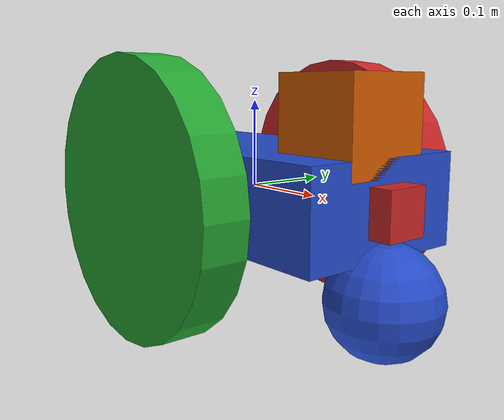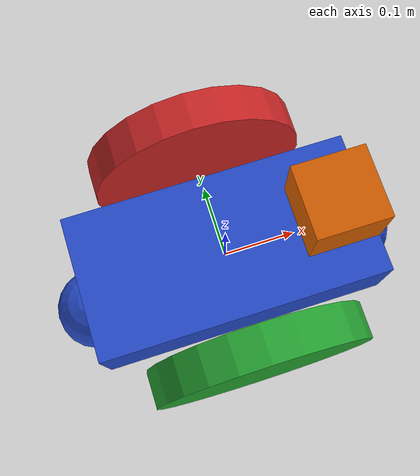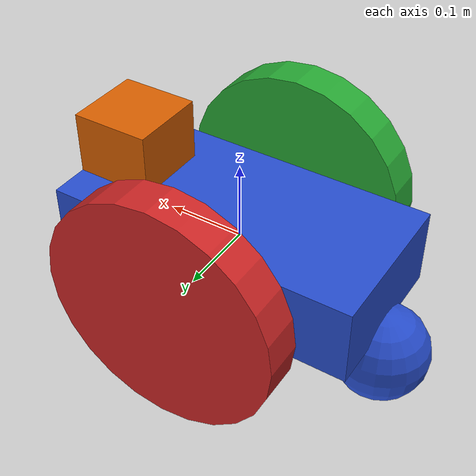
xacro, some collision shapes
<?xml version='1.0'?>

<robot name="my_robot" xmlns:xacro="http://www.ros.org/wiki/xacro">
  <xacro:include filename="$(find my_robot)/urdf/my_robot.gazebo" />
  <link name="robot_footprint"></link>

  <joint name="robot_footprint_joint" type="fixed">
    <origin xyz="0 0 0" rpy="0 0 0" />
    <parent link="robot_footprint"/>
    <child link="chassis" />
  </joint>

  <joint type="continuous" name="left_wheel_hinge">
    <origin xyz="0 0.15 0" rpy="0 0 0"/>
    <child link="left_wheel"/>
    <parent link="chassis"/>
    <axis xyz="0 1 0" rpy="0 0 0"/>
    <limit effort="10000" velocity="1000"/>
    <dynamics damping="1.0" friction="1.0"/>
  </joint>
  <joint type="continuous" name="right_wheel_hinge">
    <origin xyz="0 -0.15 0" rpy="0 0 0"/>
    <child link="right_wheel"/>
    <parent link="chassis"/>
    <axis xyz="0 1 0" rpy="0 0 0"/>
    <limit effort="10000" velocity="1000"/>
    <dynamics damping="1.0" friction="1.0"/>
  </joint>
  <joint name="camera_joint" type="fixed">
	<origin xyz="0.2 0 0" rpy="0 0 0" />
	<axis xyz="0 1 0" rpy="0 0 0"/>
	<parent link="chassis"/>
	<child link="camera_link"/>
  </joint>
  <joint name="hokuyo_joint" type="fixed">
	<origin xyz="0.15 0 0.08" rpy="0 0 0" />
	<axis xyz="0 1 0" rpy="0 0 0"/>
	<parent link="chassis"/>
	<child link="hokuyo"/>
  </joint>

  <link name='chassis'>
    <pose>0 0 0.1 0 0 0</pose>
    <inertial>
      <mass value="15.0"/>
      <origin xyz="0.0 0 0" rpy=" 0 0 0"/>
      <inertia
          ixx="0.1" ixy="0" ixz="0"
          iyy="0.1" iyz="0"
          izz="0.1"
      />
    </inertial>

    <collision name='collision'>
      <origin xyz="0 0 0" rpy=" 0 0 0"/>
      <geometry>
        <box size=".4 .2 .1"/>
      </geometry>
    </collision>

    <visual name='chassis_visual'>
      <origin xyz="0 0 0" rpy=" 0 0 0"/>
      <geometry>
        <box size=".4 .2 .1"/>
      </geometry>
    </visual>

    <collision name='back_caster_collision'>
      <origin xyz="-0.2 0 -0.09" rpy=" 0 0 0"/>
      <geometry>
        <sphere radius="0.06"/>
      </geometry>
    </collision>

    <visual name='back_caster_visual'>
      <origin xyz="-0.2 0 -0.09" rpy=" 0 0 0"/>
      <geometry>
        <sphere radius="0.06"/>
      </geometry>
    </visual>

    <collision name='front_caster_collision'>
      <origin xyz="0.2 0 -0.09" rpy=" 0 0 0"/>
      <geometry>
        <sphere radius="0.06"/>
      </geometry>
    </collision>

    <visual name='front_caster_visual'>
      <origin xyz="0.2 0 -0.09" rpy=" 0 0 0"/>
      <geometry>
        <sphere radius="0.06"/>
      </geometry>
    </visual>
  </link>

  <link name="left_wheel">
    <inertial>
      <mass value="5.0"/>
      <origin xyz="0 0 0" rpy="0 1.5707 1.5707"/>
      <inertia
          ixx="0.1" ixy="0" ixz="0"
          iyy="0.1" iyz="0"
          izz="0.1"
      />
    </inertial>
    <collision name='left_wheel_collision'>
      <origin xyz="0 0 0" rpy="0 1.5707 1.5707"/>
      <geometry>
        <cylinder radius="0.15" length="0.05"/>
      </geometry>
    </collision>
    <visual name='left_wheel_visual'>
      <origin xyz="0 0 0" rpy="0 1.5707 1.5707"/>
      <geometry>
        <cylinder radius="0.15" length="0.05"/>
      </geometry>
    </visual>
  </link>
  <link name="right_wheel">
    <inertial>
      <mass value="5.0"/>
      <origin xyz="0 0 0" rpy="0 1.5707 1.5707"/>
      <inertia
          ixx="0.1" ixy="0" ixz="0"
          iyy="0.1" iyz="0"
          izz="0.1"
      />
    </inertial>
    <collision name='right_wheel_collision'>
      <origin xyz="0 0 0" rpy="0 1.5707 1.5707"/>
      <geometry>
        <cylinder radius="0.15" length="0.05"/>
      </geometry>
    </collision>
    <visual name='right_wheel_visual'>
      <origin xyz="0 0 0" rpy="0 1.5707 1.5707"/>
      <geometry>
        <cylinder radius="0.15" length="0.05"/>
      </geometry>
    </visual>
  </link>
  <link name="camera_link">
    <inertial>
      <mass value="0.1"/>
      <origin xyz="0 0 0" rpy=" 0 0 0"/>
      <inertia
          ixx="1e-6" ixy="0" ixz="0"
          iyy="1e-6" iyz="0"
          izz="1e-6"
      />
    </inertial>
    <collision name='camera_collision'>
      <origin xyz="0 0 0" rpy=" 0 0 0"/>
      <geometry>
        <box size="0.05 0.05 0.05"/>
      </geometry>
    </collision>

    <visual name='camera_visual'>
      <origin xyz="0 0 0" rpy=" 0 0 0"/>
      <geometry>
        <box size="0.05 0.05 0.05"/>
      </geometry>
    </visual>
  </link>

  <link name="hokuyo">
    <inertial>
      <mass value="1e-5"/>
      <origin xyz="0 0 0" rpy=" 0 0 0"/>
      <inertia
          ixx="1e-6" ixy="0" ixz="0"
          iyy="1e-6" iyz="0"
          izz="1e-6"
      />
    </inertial>
    <collision name='hokuyo_collision'>
      <origin xyz="0 0 0" rpy=" 0 0 0"/>
      <geometry>
        <box size="0.1 0.1 0.1"/>
      </geometry>
    </collision>
    <visual name='hokuyo_visual'>
      <origin xyz="0 0 0" rpy=" 0 0 0"/>
      <geometry>
	<mesh filename="package://my_robot/meshes/hokuyo.dae" />
      </geometry>
    </visual>
  </link>
  <joint name="camera_optical_joint" type="fixed">
    <origin xyz="0 0 0" rpy="-1.5707 0 -1.5707"/>
    <parent link="camera_link"/>
    <child link="camera_link_optical"/>
  </joint>

  <link name="camera_link_optical">
  </link>

  <gazebo reference="left_wheel">
    <material>Gazebo/Red</material>
  </gazebo>
  <gazebo reference="right_wheel">
    <material>Gazebo/Green</material>
  </gazebo>
  <gazebo reference="camera_link">
    <material>Gazebo/Red</material>
  </gazebo>
  <gazebo reference="chassis">
    <material>Gazebo/Blue</material>
  </gazebo>

</robot>
